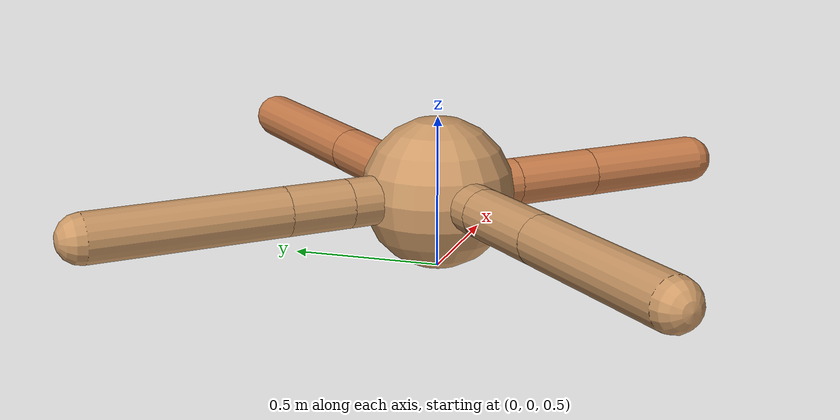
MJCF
<mujoco model="ant">
  <compiler angle="degree" coordinate="local" inertiafromgeom="true" />
  <option integrator="RK4" timestep="0.01" />
  <custom>
    <numeric data="0.0 0.0 0.55 1.0 0.0 0.0 0.0 0.0 1.0 0.0 -1.0 0.0 -1.0 0.0 1.0" name="init_qpos" />
  </custom>
  <default>
    <joint armature="1" damping="1" limited="true" />
    <geom conaffinity="0" condim="3" density="5.0" friction="1.5 0.1 0.1" margin="0.01" rgba="0.8 0.6 0.4 1" />
  </default>
  <worldbody>
    <body name="torso" pos="0 0 0.75">
      <geom name="torso_geom" pos="0 0 0" size="0.25" type="sphere" />

      <body name="front_left_leg" pos="0 0 0">
        <geom fromto="0.0 0.0 0.0 0.2495450906899908 0.2495450906899908 0.0" name="aux_1_geom" size="0.08" type="capsule" rgba=".8 .5 .3 1" />
        <body name="aux_1" pos="0.2495450906899908 0.2495450906899908 0.0">
          <joint axis="0 0 1" name="hip_1" pos="0.0 0.0 0.0" range="-40 40" type="hinge" />
          <geom fromto="0.0 0.0 0.0 0.2140876500203469 0.2140876500203469 0.0" name="left_leg_geom" size="0.08" type="capsule" rgba=".8 .5 .3 1" />
          <body pos="0.2140876500203469 0.2140876500203469 0.0" name="front_left_foot">
            <joint axis="-1 1 0" name="ankle_1" pos="0.0 0.0 0.0" range="30 100" type="hinge" />
            <geom fromto="0.0 0.0 0.0 0.4985978655176 0.4985978655176 0.0" name="left_ankle_geom" size="0.08" type="capsule" rgba=".8 .5 .3 1" />
          </body>
        </body>
      </body>
      <body name="front_right_leg" pos="0 0 0">
        <geom fromto="0.0 0.0 0.0 -0.23189471741788525 0.23189471741788525 0.0" name="aux_2_geom" size="0.08" type="capsule" />
        <body name="aux_2" pos="-0.23189471741788525 0.23189471741788525 0.0">
          <joint axis="0 0 1" name="hip_2" pos="0.0 0.0 0.0" range="-40 40" type="hinge" />
          <geom fromto="0.0 0.0 0.0 -0.1488322103106344 0.1488322103106344 0.0" name="right_leg_geom" size="0.08" type="capsule" />
          <body pos="-0.1488322103106344 0.1488322103106344 0.0" name="front_right_foot">
            <joint axis="1 1 0" name="ankle_2" pos="0.0 0.0 0.0" range="-100 -30" type="hinge" />
            <geom fromto="0.0 0.0 0.0 -0.4548789097407143 0.4548789097407143 0.0" name="right_ankle_geom" size="0.08" type="capsule" />
          </body>
        </body>
      </body>
      <body name="left_back_leg" pos="0 0 0">
        <geom fromto="0.0 0.0 0.0 -0.21749382889745994 -0.21749382889745994 0.0" name="aux_3_geom" size="0.08" type="capsule" />
        <body name="aux_3" pos="-0.21749382889745994 -0.21749382889745994 0.0">
          <joint axis="0 0 1" name="hip_3" pos="0.0 0.0 0.0" range="-40 40" type="hinge" />
          <geom fromto="0.0 0.0 0.0 -0.2288496701854694 -0.2288496701854694 0.0" name="back_leg_geom" size="0.08" type="capsule" />
          <body pos="-0.2288496701854694 -0.2288496701854694 0.0" name="left_back_foot">
            <joint axis="-1 1 0" name="ankle_3" pos="0.0 0.0 0.0" range="-100 -30" type="hinge" />
            <geom fromto="0.0 0.0 0.0 -0.4557788683612414 -0.4557788683612414 0.0" name="third_ankle_geom" size="0.08" type="capsule" />
          </body>
        </body>
      </body>
      <body name="right_back_leg" pos="0 0 0">
        <geom fromto="0.0 0.0 0.0 0.20035074841374298 -0.20035074841374298 0.0" name="aux_4_geom" size="0.08" type="capsule" rgba=".8 .5 .3 1" />
        <body name="aux_4" pos="0.20035074841374298 -0.20035074841374298 0.0">
          <joint axis="0 0 1" name="hip_4" pos="0.0 0.0 0.0" range="-40 40" type="hinge" />
          <geom fromto="0.0 0.0 0.0 0.2078737680132232 -0.2078737680132232 0.0" name="rightback_leg_geom" size="0.08" type="capsule" rgba=".8 .5 .3 1" />
          <body pos="0.2078737680132232 -0.2078737680132232 0.0" name="right_back_foot">
            <joint axis="1 1 0" name="ankle_4" pos="0.0 0.0 0.0" range="30 100" type="hinge" />
            <geom fromto="0.0 0.0 0.0 0.3011879394934207 -0.3011879394934207 0.0" name="fourth_ankle_geom" size="0.08" type="capsule" rgba=".8 .5 .3 1" />
          </body>
        </body>
      </body>
    </body>
  </worldbody>
  <actuator>
    <motor ctrllimited="true" ctrlrange="-1.0 1.0" joint="hip_4" gear="150" />
    <motor ctrllimited="true" ctrlrange="-1.0 1.0" joint="ankle_4" gear="150" />
    <motor ctrllimited="true" ctrlrange="-1.0 1.0" joint="hip_1" gear="150" />
    <motor ctrllimited="true" ctrlrange="-1.0 1.0" joint="ankle_1" gear="150" />
    <motor ctrllimited="true" ctrlrange="-1.0 1.0" joint="hip_2" gear="150" />
    <motor ctrllimited="true" ctrlrange="-1.0 1.0" joint="ankle_2" gear="150" />
    <motor ctrllimited="true" ctrlrange="-1.0 1.0" joint="hip_3" gear="150" />
    <motor ctrllimited="true" ctrlrange="-1.0 1.0" joint="ankle_3" gear="150" />
  </actuator>
</mujoco>
